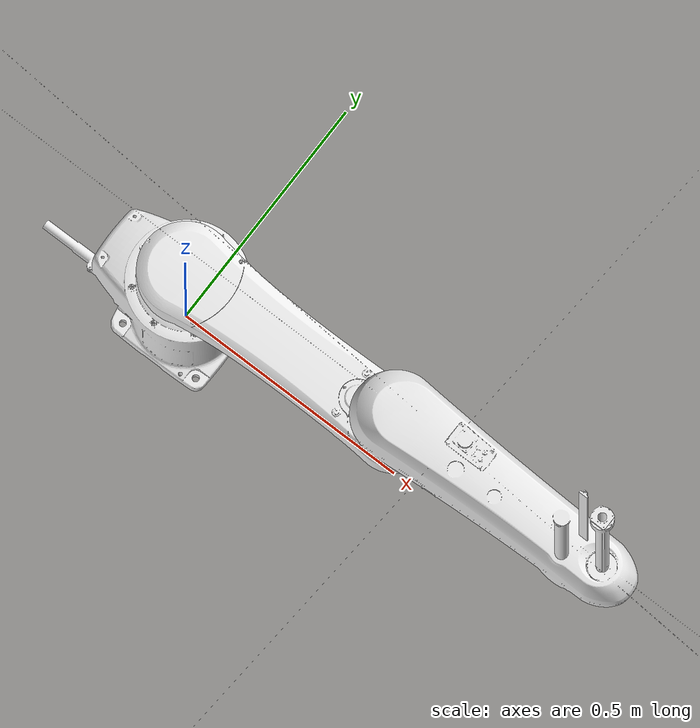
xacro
<?xml version="1.0"?>
<robot name="hm40a04" xmlns:xacro="http://www.ros.org/wiki/xacro">
  <xacro:include filename="$(find denso_robot_descriptions)/hm40a04_description/urdf/hm40a04.xacro"/>
  <link name="base_link"/>
  <xacro:hm40a04 parent="base_link">
    <origin xyz="0 0 0" rpy="0 0 0"/>
  </xacro:hm40a04>
</robot>

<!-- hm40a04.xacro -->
<!-- Copyright (C) 2020, TechMagic K.K. -->
<robot xmlns:xacro="http://www.ros.org/wiki/xacro">
  <xacro:property name="folder" value="package://denso_robot_descriptions/hm40a04_description"/>
  <xacro:macro name="hm40a04" params="parent *origin">
    <joint name="hm40a04_base_joint" type="fixed">
      <xacro:insert_block name="origin"/>
      <parent link="${parent}"/>
      <child link="link_0"/>
    </joint>
    <link name="link_0">
      <visual>
	<geometry>
	  <mesh filename="${folder}/mesh/hm40a04_0.stl"/>
	</geometry>
	<material name="white"/>
      </visual>
      <collision>
	<geometry>
	  <mesh filename="${folder}/mesh/hm40a04_0.stl"/>
	</geometry>
      </collision>
      <inertial>
	<mass value="1" />
	<inertia ixx="1" ixy="0" ixz="0" iyy="1" iyz="0" izz="1" />
      </inertial>
    </link>
    <joint name="joint_1" type="revolute">
      <parent link="link_0"/>
      <child link="link_1"/>
      <origin xyz="0 0 0.293" rpy="0 0 0"/>
      <axis xyz="0 0 1" />
      <limit effort="1" lower="${-pi}" upper="${pi}" velocity="1.0" />
      <dynamics damping="0" friction="0" />
    </joint>
    <link name="link_1">
      <visual>
	<geometry>
	  <mesh filename="${folder}/mesh/hm40a04_1.stl"/>
	</geometry>
	<material name="white"/>
      </visual>
      <collision>
	<geometry>
	  <mesh filename="${folder}/mesh/hm40a04_1.stl"/>
	</geometry>
      </collision>
      <inertial>
	<mass value="1" />
	<inertia ixx="1" ixy="0" ixz="0" iyy="1" iyz="0" izz="1" />
      </inertial>
    </link>
    <joint name="joint_2" type="revolute">
      <parent link="link_1" />
      <child link="link_2" />
      <origin rpy="0.000000 0.000000 0.000000" xyz="0.5 0.0 0.105" />
      <axis xyz="0 0 1" />
      <limit effort="1" lower="-${pi}" upper="${pi}" velocity="2.61799387799149" />
      <dynamics damping="0" friction="0" />
    </joint>
    <link name="link_2">
      <visual>
	<geometry>
	  <mesh filename="${folder}/mesh/hm40a04_2.stl"/>
	</geometry>
	<material name="white"/>
      </visual>
      <collision>
	<geometry>
	  <mesh filename="${folder}/mesh/hm40a04_2.stl"/>
	</geometry>
      </collision>
      <inertial>
	<mass value="1" />
	<inertia ixx="1" ixy="0" ixz="0" iyy="1" iyz="0" izz="1" />
      </inertial>
    </link>
    <joint name="joint_3" type="prismatic">
      <parent link="link_2" />
      <child link="link_3" />
      <origin xyz="0.5 0 -0.04" />
      <axis xyz="0 0 1" />
      <limit effort="1" lower="-0.4" upper="0.0" velocity="1.0" />
      <dynamics damping="0" friction="0" />
    </joint>
    <link name="link_3">
      <visual>
	<geometry>
	  <mesh filename="${folder}/mesh/hm40a04_3.stl"/>
	</geometry>
	<material name="white"/>
      </visual>
      <collision>
	<geometry>
	  <mesh filename="${folder}/mesh/hm40a04_3.stl"/>
	</geometry>
      </collision>
      <inertial>
	<mass value="1" />
	<inertia ixx="1" ixy="0" ixz="0" iyy="1" iyz="0" izz="1" />
      </inertial>
    </link>
    <joint name="joint_4" type="revolute">
      <parent link="link_3" />
      <child link="link_4" />
      <origin xyz="0 0 0" rpy="0 0 0"/>
      <axis xyz="0 0 1" />
      <limit effort="1" lower="-2.705260340591211" upper="2.705260340591211" velocity="3.92699081698724" />
      <dynamics damping="0" friction="0" />
    </joint>
    <link name="link_4">
    </link>
  </xacro:macro>
</robot>
